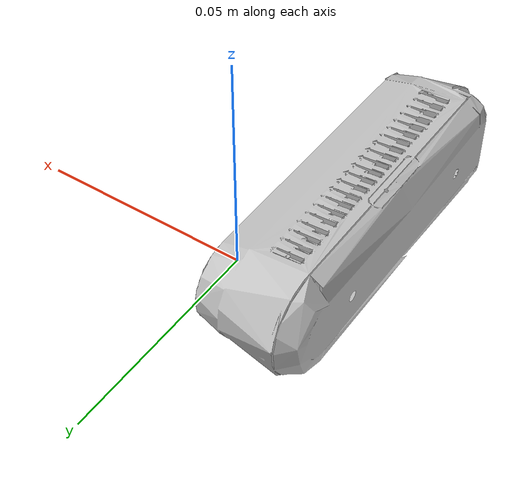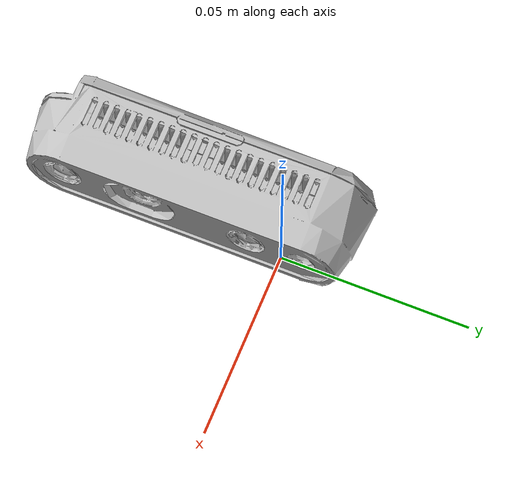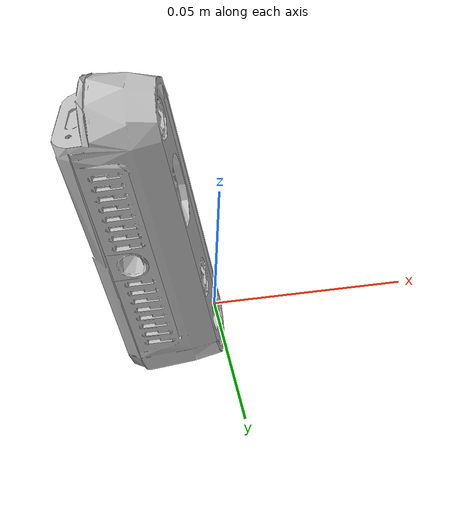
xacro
<?xml version="1.0"?>
<robot xmlns:xacro="http://ros.org/wiki/xacro">

  <xacro:property name="d435_cam_mount_from_center_offset" value="0"/>
  <xacro:property name="M_PI" value="3.1415926535897931" />
  <xacro:property name="d435_cam_depth_px" value="${d435_cam_mount_from_center_offset}"/>
  <xacro:property name="d435_cam_depth_py" value="0.0275"/>
  <xacro:property name="d435_cam_depth_pz" value="${d435_cam_height/2}"/>

  <xacro:property name="r200_cam_rgb_px" value="0.005"/>
  <xacro:property name="r200_cam_rgb_py" value="0.018"/>
  <xacro:property name="r200_cam_rgb_pz" value="0.013"/>
  <xacro:property name="r200_cam_depth_offset" value="0.01"/>

  <!-- Link 1 -->
  <link name="dummy_camera_link">
      <visual>
        <origin xyz="${d435_cam_mount_from_center_offset} ${-d435_cam_depth_py} 0" rpy="${M_PI/2} 0 ${M_PI/2}"/>
        <geometry>
	        <mesh filename="package://realsense2_description/meshes/d435.dae" />
        </geometry>
      </visual>
  </link>

  <joint name="camera_rgb_joint" type="fixed">
    <origin xyz="${r200_cam_rgb_px} ${r200_cam_rgb_py} ${r200_cam_rgb_pz}" rpy="0 0 0"/>
    <parent link="dummy_camera_link"/>
    <child link="camera_rgb_frame"/>
  </joint>
  <link name="camera_rgb_frame"/>

  <joint name="camera_rgb_optical_joint" type="fixed">
    <origin xyz="0 0 0" rpy="-1.57 0 -1.57"/>
    <parent link="camera_rgb_frame"/>
    <child link="camera_rgb_optical_frame"/>
  </joint>
  <link name="camera_rgb_optical_frame"/>

  <joint name="camera_depth_joint" type="fixed">
    <origin xyz="${r200_cam_rgb_px} ${r200_cam_rgb_py + r200_cam_depth_offset} ${r200_cam_rgb_pz}" rpy="0 0 0"/>
    <parent link="dummy_camera_link"/>
    <child link="camera_depth_frame"/>
  </joint>
  <link name="camera_depth_frame"/>

  <joint name="camera_depth_optical_joint" type="fixed">
    <origin xyz="0 0 0" rpy="-1.57 0 -1.57"/>
    <parent link="camera_depth_frame"/>
    <child link="camera_depth_optical_frame"/>
  </joint>
  <link name="camera_depth_optical_frame"/>

</robot>
